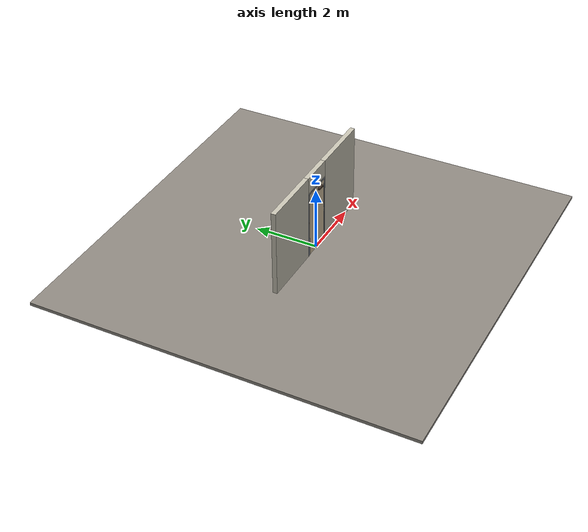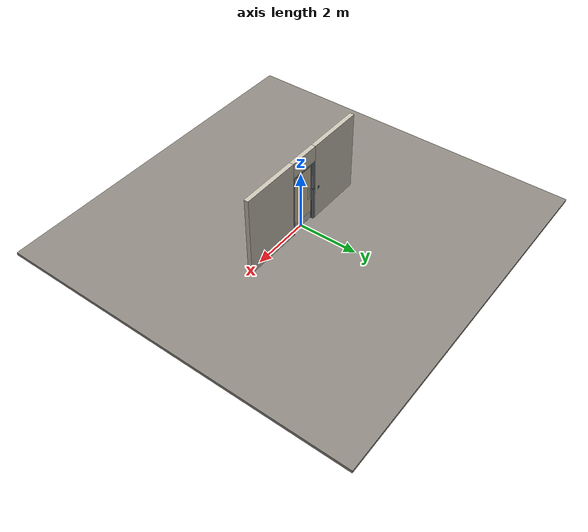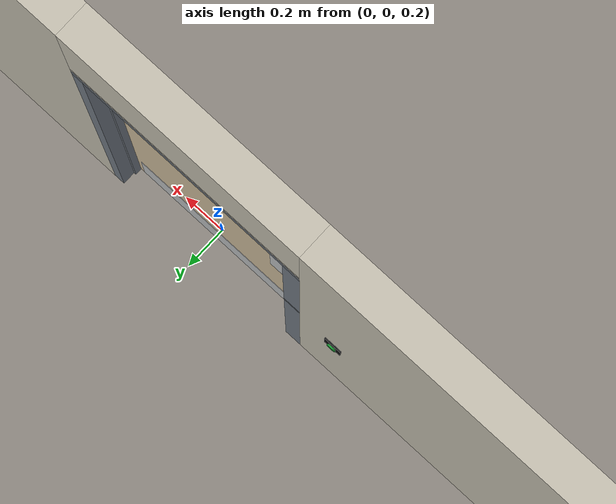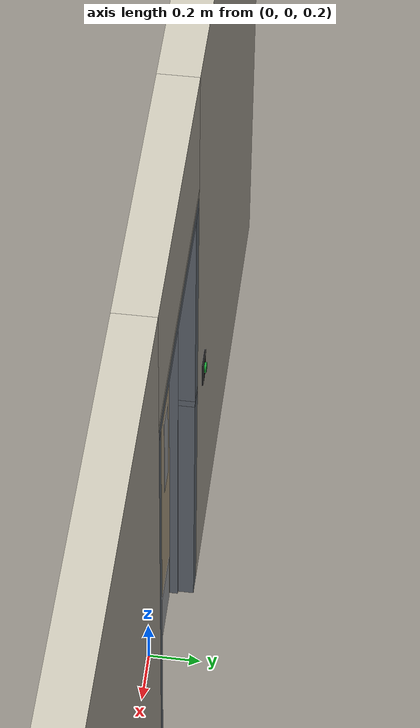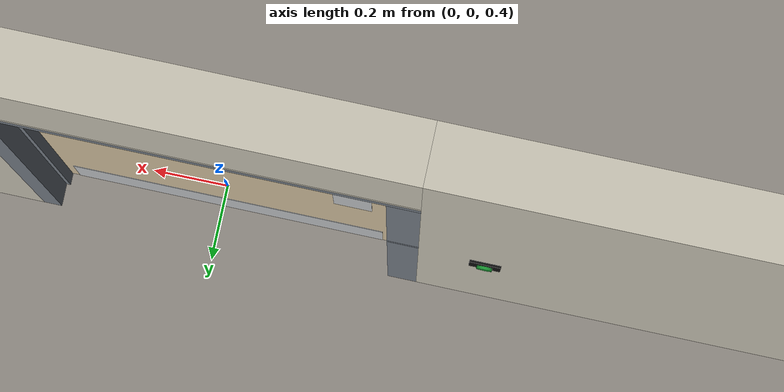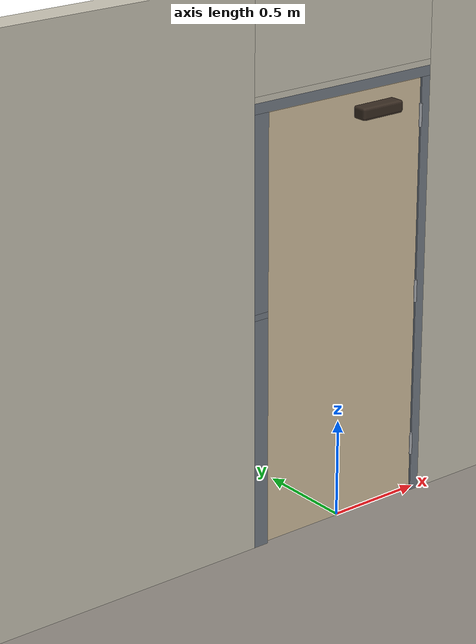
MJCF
<?xml version="1.0" ?>
<mujoco model="db0539_swing_single_simple">
  <compiler angle="radian" meshdir="../../hardware" texturedir="../../textures" autolimits="true" inertiafromgeom="false"/>
  <option timestep="0.002" integrator="implicitfast" cone="elliptic" impratio="10" noslip_iterations="3">
    <flag multiccd="enable"/>
  </option>
  <size memory="16M"/>
  <default>
    <geom condim="4" solref="0.005 1" solimp="0.95 0.99 0.001"/>
    <joint solreflimit="0.005 1" solimplimit="0.95 0.99 0.001"/>
    <tendon solreflimit="0.005 1"/>
    <equality solref="0.002 1"/>
  </default>
  <visual>
    <headlight ambient="0.4 0.4 0.4" diffuse="0.7 0.7 0.7" specular="0.2 0.2 0.2"/>
    <quality shadowsize="4096"/>
    <map znear="0.01" zfar="60"/>
  </visual>
  <asset>
    <mesh name="closer_body_b226fdb10b" file="closer_body_b226fdb10b.obj"/>
    <mesh name="hinge_e22b26c0c1" file="hinge_e22b26c0c1.obj"/>
    <mesh name="hinge_jamb_e1d088f8dc" file="hinge_jamb_e1d088f8dc.obj"/>
    <material name="mat_floor" rgba="0.55 0.53 0.5 1" specular="0.2" shininess="0.15" reflectance="0"/>
    <material name="mat_wall" rgba="0.78 0.76 0.7 1" specular="0.2" shininess="0.1" reflectance="0"/>
    <material name="mat_leaf" rgba="0.82 0.75 0.62 1" specular="0.23" shininess="0.45" reflectance="0.02"/>
    <material name="mat_hinge" rgba="0.65 0.66 0.68 1" specular="0.74" shininess="0.5" reflectance="0.36"/>
    <material name="mat_op_stainless" rgba="0.75 0.76 0.77 1" specular="0.8" shininess="0.65" reflectance="0.4"/>
    <material name="mat_deadbolt" rgba="0.85 0.66 0.3 1" specular="0.8" shininess="0.75" reflectance="0.4"/>
    <material name="mat_frame" rgba="0.45 0.48 0.52 1" specular="0.32" shininess="0.6" reflectance="0.08"/>
    <material name="mat_closer" rgba="0.22 0.17 0.13 1" specular="0.8" shininess="0.6" reflectance="0.4"/>
    <material name="mat_kick" rgba="0.75 0.76 0.77 1" specular="0.8" shininess="0.65" reflectance="0.4"/>
    <material name="mat_wallreader" rgba="0.05 0.05 0.05 1" specular="0.38" shininess="0.3" reflectance="0.12"/>
    <material name="mat_rex" rgba="0.1 0.6 0.2 1" specular="0.2" shininess="0.6" reflectance="0"/>
    <texture name="skybox" type="skybox" builtin="gradient" rgb1="0.6 0.7 0.85" rgb2="0.9 0.92 0.95" width="256" height="256"/>
  </asset>
  <worldbody>
    <light name="sun" pos="1.5 -2.5 4" dir="-0.3 0.5 -0.8" directional="true" diffuse="0.8 0.8 0.8" specular="0.3 0.3 0.3" castshadow="true"/>
    <light name="fill" pos="-1.5 2.5 3" dir="0.3 -0.5 -0.7" directional="true" diffuse="0.35 0.35 0.4" castshadow="false"/>
    <camera name="robot_view" pos="0 -2.594313 1.812087" xyaxes="1 0 0 0 0.26963 0.962964" fovy="52"/>
    <camera name="far_view" pos="0 2.681312 1.812087" xyaxes="-1 0 0 0 -0.26963 0.962964" fovy="52"/>
    <camera name="iso" pos="-2.004737 -2.172262 2.234138" xyaxes="0.741536 -0.670913 0 0.242917 0.268487 0.932151" fovy="46"/>
    <camera name="detail_handle" pos="-0.1735 -0.7565 1.32" xyaxes="0.97561 0.219512 0 -0.070934 0.315262 0.94635" fovy="38"/>
    <geom name="floor" type="box" size="6 6 0.05" pos="0 0 -0.05" material="mat_floor" group="0" contype="1" conaffinity="1" friction="0.8 0.005 0.0001" density="2400"/>
    <geom name="wall_left" type="box" size="0.97975 0.0725 1.3735" pos="-1.52025 0.0435 1.3735" material="mat_wall" group="0" contype="1" conaffinity="1" friction="0.6 0.005 0.0001" density="800"/>
    <geom name="wall_right" type="box" size="0.99475 0.0725 1.3735" pos="1.50525 0.0435 1.3735" material="mat_wall" group="0" contype="1" conaffinity="1" friction="0.6 0.005 0.0001" density="800"/>
    <geom name="wall_header" type="box" size="0.5255 0.0725 0.26" pos="-0.015 0.0435 2.487" material="mat_wall" group="0" contype="1" conaffinity="1" friction="0.6 0.005 0.0001" density="800"/>
    <geom name="hinge_0_jamb" type="mesh" mesh="hinge_jamb_e1d088f8dc" pos="0.4575 -0.029 0.259" quat="0 0 1 0" material="mat_hinge" group="1" contype="0" conaffinity="0" density="7850"/>
    <geom name="hinge_1_jamb" type="mesh" mesh="hinge_jamb_e1d088f8dc" pos="0.4575 -0.029 1.076" quat="0 0 1 0" material="mat_hinge" group="1" contype="0" conaffinity="0" density="7850"/>
    <geom name="hinge_2_jamb" type="mesh" mesh="hinge_jamb_e1d088f8dc" pos="0.4575 -0.029 1.963" quat="0 0 1 0" material="mat_hinge" group="1" contype="0" conaffinity="0" density="7850"/>
    <geom name="leaf_deadbolt_strike_b" type="box" size="0.0155 0.003 0.0005" pos="-0.46 0 1.1615" quat="0.5 0.5 0.5 0.5" material="mat_deadbolt" group="1" contype="0" conaffinity="0" density="7800"/>
    <geom name="leaf_deadbolt_strike_l" type="box" size="0.003 0.0155 0.0005" pos="-0.46 -0.0125 1.18" quat="0.5 0.5 0.5 0.5" material="mat_deadbolt" group="1" contype="0" conaffinity="0" density="7800"/>
    <geom name="leaf_deadbolt_strike_t" type="box" size="0.0155 0.003 0.0005" pos="-0.46 0 1.1985" quat="0.5 0.5 0.5 0.5" material="mat_deadbolt" group="1" contype="0" conaffinity="0" density="7800"/>
    <geom name="leaf_deadbolt_strike_r" type="box" size="0.003 0.0155 0.0005" pos="-0.46 0.0125 1.18" quat="0.5 0.5 0.5 0.5" material="mat_deadbolt" group="1" contype="0" conaffinity="0" density="7800"/>
    <geom name="jamb_hinge" type="box" size="0.025 0.0725 1.0735" pos="0.4855 0.0435 1.0735" material="mat_frame" group="0" contype="1" conaffinity="1" friction="0.6 0.005 0.0001" density="300"/>
    <geom name="strike_1180_wall_n" type="box" size="0.04 0.05325 0.0155" pos="-0.5005 0.06275 1.18" material="mat_frame" group="0" contype="1" conaffinity="1" friction="0.6 0.005 0.0001" density="300"/>
    <geom name="strike_1180_wall_p" type="box" size="0.04 0.00975 0.0155" pos="-0.5005 -0.01925 1.18" material="mat_frame" group="0" contype="1" conaffinity="1" friction="0.6 0.005 0.0001" density="300"/>
    <geom name="strike_1180_back" type="box" size="0.0253 0.0095 0.0155" pos="-0.5152 0 1.18" material="mat_frame" group="0" contype="1" conaffinity="1" friction="0.6 0.005 0.0001" density="300"/>
    <geom name="jamb_strike_0" type="box" size="0.04 0.0725 0.58225" pos="-0.5005 0.0435 0.58225" material="mat_frame" group="0" contype="1" conaffinity="1" friction="0.6 0.005 0.0001" density="300"/>
    <geom name="jamb_strike_1" type="box" size="0.04 0.0725 0.47575" pos="-0.5005 0.0435 1.67125" material="mat_frame" group="0" contype="1" conaffinity="1" friction="0.6 0.005 0.0001" density="300"/>
    <geom name="jamb_head" type="box" size="0.5255 0.0725 0.025" pos="-0.015 0.0435 2.172" material="mat_frame" group="0" contype="1" conaffinity="1" friction="0.6 0.005 0.0001" density="300"/>
    <geom name="head_stud" type="box" size="0.5255 0.0725 0.015" pos="-0.015 0.0435 2.212" material="mat_wall" group="0" contype="1" conaffinity="1" friction="0.6 0.005 0.0001" density="500"/>
    <geom name="stop_hinge" type="box" size="0.0055 0.016 1.0735" pos="0.455 0.0385 1.0735" material="mat_frame" group="0" contype="1" conaffinity="1" friction="0.6 0.005 0.0001" density="300"/>
    <geom name="stop_strike" type="box" size="0.0055 0.016 1.0735" pos="-0.455 0.0385 1.0735" material="mat_frame" group="0" contype="1" conaffinity="1" friction="0.6 0.005 0.0001" density="300"/>
    <geom name="stop_head" type="box" size="0.4605 0.016 0.0055" pos="0 0.0385 2.1415" material="mat_frame" group="0" contype="1" conaffinity="1" friction="0.6 0.005 0.0001" density="300"/>
    <geom name="rex_plate" type="box" size="0.04 0.003 0.06" pos="-0.7105 0.119 1.1" material="mat_wallreader" group="1" contype="0" conaffinity="0" density="1000"/>
    <site name="approach_point" pos="0 -1.5 0" quat="1 0 0 0" size="0.05" rgba="0.2 0.9 0.2 0.5" group="4"/>
    <site name="goal_point" pos="0 1.5 0" quat="1 0 0 0" size="0.05" rgba="0.2 0.9 0.2 0.5" group="4"/>
    <site name="door_plane_center" pos="0 0 1.0735" quat="1 0 0 0" size="0.02" rgba="0.2 0.9 0.2 0.5" group="4"/>
    <body name="rex_button" pos="-0.7105 0.122 1.1">
      <inertial pos="0 0.004 0" mass="0.010053" quat="0 0 0.707107 -0.707107" diaginertia="0.000001059 0.000001059 0.000002011"/>
      <joint name="rex_button_slide" type="slide" axis="0 -1 0" limited="true" range="0 0.004" damping="1" stiffness="1500" springref="-0.004" armature="0.1"/>
      <geom name="rex_button_geom" type="cylinder" size="0.02 0.004" pos="0 0.004 0" quat="0.707107 -0.707107 0 0" material="mat_rex" group="0" contype="1" conaffinity="1" friction="0.6 0.005 0.0001" density="1000"/>
    </body>
    <body name="leaf" pos="0.4605 0 0">
      <inertial pos="-0.430648 -0.008972 1.185289" mass="41.801718" quat="0.51418 -0.512344 -0.476916 -0.495654" diaginertia="2.669396533 20.471895514 23.093477625"/>
      <joint name="leaf_hinge" type="hinge" axis="0 0 1" pos="-0.003 -0.029 0" limited="true" range="0 1.570796" damping="10.268966" frictionloss="0.652348" stiffness="11.911156" springref="-1.783202" armature="0.02"/>
      <geom name="leaf_slab" type="box" size="0.457 0.022 1.067" pos="-0.46 0 1.076" material="mat_leaf" group="0" contype="1" conaffinity="1" friction="0.4 0.005 0.0001" density="1"/>
      <geom name="hinge_0" type="mesh" mesh="hinge_e22b26c0c1" pos="-0.003 -0.029 0.259" quat="0 0 1 0" material="mat_hinge" group="1" contype="0" conaffinity="0" density="7850"/>
      <geom name="hinge_1" type="mesh" mesh="hinge_e22b26c0c1" pos="-0.003 -0.029 1.076" quat="0 0 1 0" material="mat_hinge" group="1" contype="0" conaffinity="0" density="7850"/>
      <geom name="hinge_2" type="mesh" mesh="hinge_e22b26c0c1" pos="-0.003 -0.029 1.963" quat="0 0 1 0" material="mat_hinge" group="1" contype="0" conaffinity="0" density="7850"/>
      <geom name="leaf_push_plate_p" type="box" size="0.05 0.0008 0.2" pos="-0.812 0.0228 1.04" material="mat_op_stainless" group="1" contype="0" conaffinity="0" density="7900"/>
      <geom name="leaf_deadbolt_faceplate" type="box" size="0.0006 0.014 0.0245" pos="-0.9164 0 1.18" material="mat_deadbolt" group="1" contype="0" conaffinity="0" density="8500"/>
      <geom name="closer_body" type="mesh" mesh="closer_body_b226fdb10b" pos="-0.3 -0.022 2.054" quat="0 0 -0.707107 0.707107" material="mat_closer" group="1" contype="0" conaffinity="0" density="2000"/>
      <geom name="closer_body_col" type="box" size="0.12 0.04 0.03" pos="-0.3 -0.062 2.054" material="mat_closer" group="3" contype="1" conaffinity="1" rgba="0.8 0.3 0.3 0.25" friction="0.6 0.005 0.0001" density="2000"/>
      <geom name="kick_plate_p" type="box" size="0.427 0.0008 0.125" pos="-0.46 0.0228 0.144" material="mat_kick" group="2" contype="0" conaffinity="0" density="7900"/>
      <site name="leaf_push_plate_push_p" pos="-0.812 0.022 1.04" quat="1 0 0 0" size="0.012" rgba="0.2 0.9 0.2 0.5" group="4"/>
      <site name="leaf_edge_mid" pos="-0.917 0 1.067" quat="1 0 0 0" size="0.02" rgba="0.2 0.9 0.2 0.5" group="4"/>
      <body name="leaf_deadbolt" pos="-0.917 0 1.18">
        <inertial pos="0.0023 0 0" mass="0.18836" quat="0 0 0.707107 0.707107" diaginertia="0.000013829 0.000052194 0.000057986"/>
        <geom name="leaf_deadbolt_box" type="box" size="0.0277 0.008 0.0125" pos="0.0023 0 0" material="mat_deadbolt" group="0" contype="1" conaffinity="1" friction="0.3 0.005 0.0001" density="8500"/>
      </body>
    </body>
  </worldbody>
  <sensor>
    <jointpos name="leaf_hinge_pos" joint="leaf_hinge"/>
    <jointvel name="leaf_hinge_vel" joint="leaf_hinge"/>
    <jointpos name="rex_button_slide_pos" joint="rex_button_slide"/>
    <jointvel name="rex_button_slide_vel" joint="rex_button_slide"/>
  </sensor>
</mujoco>
